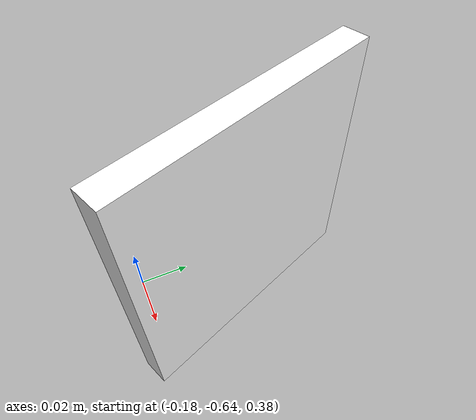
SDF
<?xml version="1.0" ?>
<sdf version='1.4'>
  <world name='iiwa_personal_world'>
    <physics name='1ms' type='ignored'>
      <max_step_size>0.001</max_step_size>
      <real_time_factor>1</real_time_factor>
      <real_time_update_rate>1000</real_time_update_rate>
    </physics>
    <plugin name='gz::sim::systems::Physics' filename='gz-sim-physics-system'/>
    <plugin name='gz::sim::systems::UserCommands' filename='gz-sim-user-commands-system'/>
    <plugin name='gz::sim::systems::SceneBroadcaster' filename='gz-sim-scene-broadcaster-system'/>
    <plugin name='gz::sim::systems::Contact' filename='gz-sim-contact-system'/>
    <gravity>0 0 -9.8000000000000007</gravity>
    <magnetic_field>5.5644999999999998e-06 2.2875799999999999e-05 -4.2388400000000002e-05</magnetic_field>
    <atmosphere type='adiabatic'/>
    <scene>
      <ambient>0.400000006 0.400000006 0.400000006 1</ambient>
      <background>0.699999988 0.699999988 0.699999988 1</background>
      <shadows>true</shadows>
    </scene>
    <model name='ground_plane'>
      <static>true</static>
      <link name='link'>
        <collision name='collision'>
          <geometry>
            <plane>
              <normal>0 0 1</normal>
              <size>100 100</size>
            </plane>
          </geometry>
          <surface>
            <friction>
              <ode/>
            </friction>
            <bounce/>
            <contact/>
          </surface>
        </collision>
        <visual name='visual'>
          <geometry>
            <plane>
              <normal>0 0 1</normal>
              <size>100 100</size>
            </plane>
          </geometry>
          <material>
            <ambient>0.529, 0.808, 0.922 1</ambient>
            <diffuse>0.529, 0.808, 0.922 1</diffuse>
            <specular>0.529, 0.808, 0.922 1</specular>
          </material>
        </visual>
        <pose>0 0 0 0 0 0</pose>
        <inertial>
          <pose>0 0 0 0 0 0</pose>
          <mass>1</mass>
          <inertia>
            <ixx>1</ixx>
            <ixy>0</ixy>
            <ixz>0</ixz>
            <iyy>1</iyy>
            <iyz>0</iyz>
            <izz>1</izz>
          </inertia>
        </inertial>
        <enable_wind>false</enable_wind>
      </link>
      <pose>0 0 0 0 0 0</pose>
      <self_collide>false</self_collide>
    </model>
    <light name='sun' type='directional'>
      <pose>0 0 10 0 0 0</pose>
      <cast_shadows>true</cast_shadows>
      <intensity>1</intensity>
      <direction>-0.5 0.10000000000000001 -0.90000000000000002</direction>
      <diffuse>0.800000012 0.800000012 0.800000012 1</diffuse>
      <specular>0.200000003 0.200000003 0.200000003 1</specular>
      <attenuation>
        <range>1000</range>
        <linear>0.01</linear>
        <constant>0.90000000000000002</constant>
        <quadratic>0.001</quadratic>
      </attenuation>
      <spot>
        <inner_angle>0</inner_angle>
        <outer_angle>0</outer_angle>
        <falloff>0</falloff>
      </spot>
    </light>
    <include>
      <uri>
        model://aruco_tag
      </uri>
      <pose>-0.159, -0.600, 0.427 -1.57 0 -1.20</pose>
    </include>
  </world>
</sdf>

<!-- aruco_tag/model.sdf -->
<sdf version='1.9'>
  <model name='aruco_tag'>
    <static>true</static>
    <pose>0 0 1 0 0 0</pose>
    <link name='base'>
      <visual name='base_visual'>
        <geometry>
           <box>
            <size>0.1 0.1 0.01</size>
          </box>
        </geometry>
        <material>
          <diffuse>1 1 1 1</diffuse>
          <specular>0.4 0.4 0.4 1</specular>
          <pbr>
            <metal>
              <albedo_map>aruco-5.png</albedo_map>
            </metal>
          </pbr>
        </material>
      </visual>
    </link>
  </model>
</sdf>
